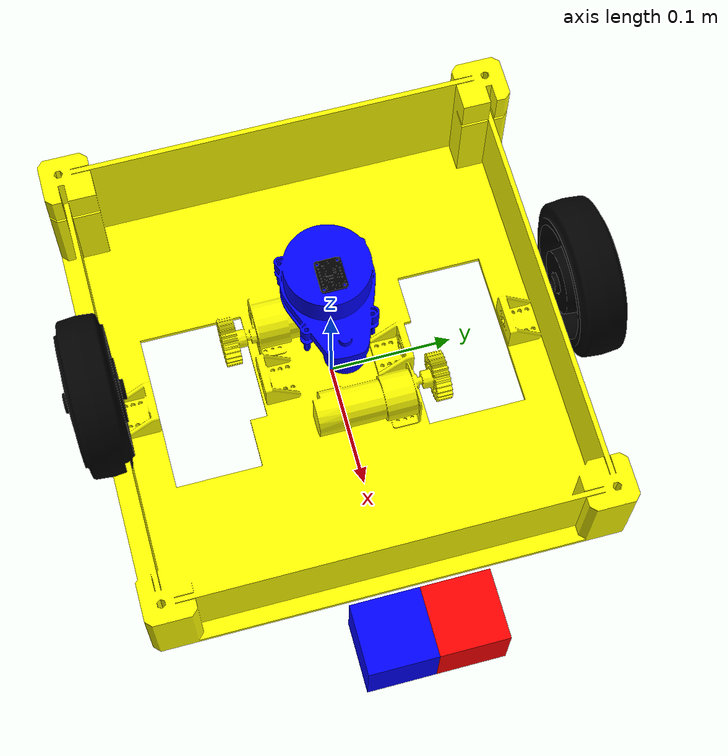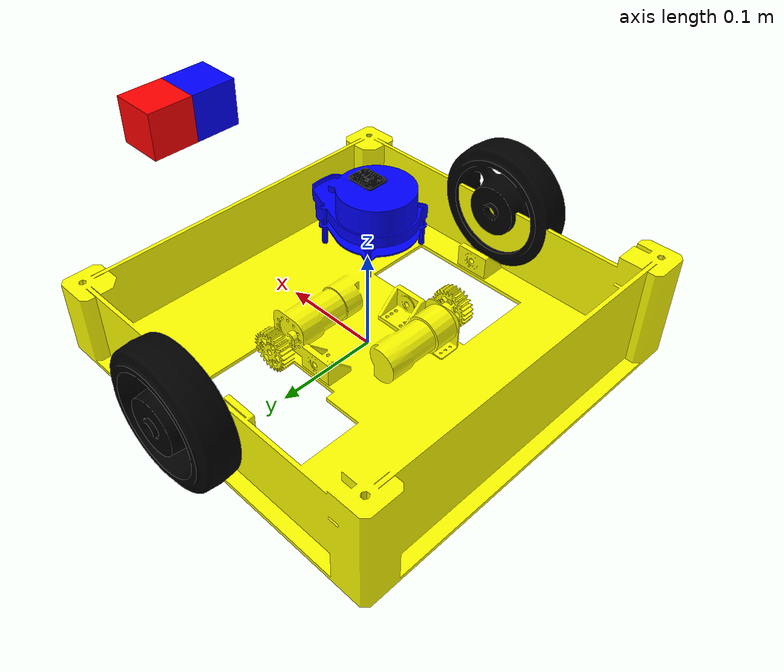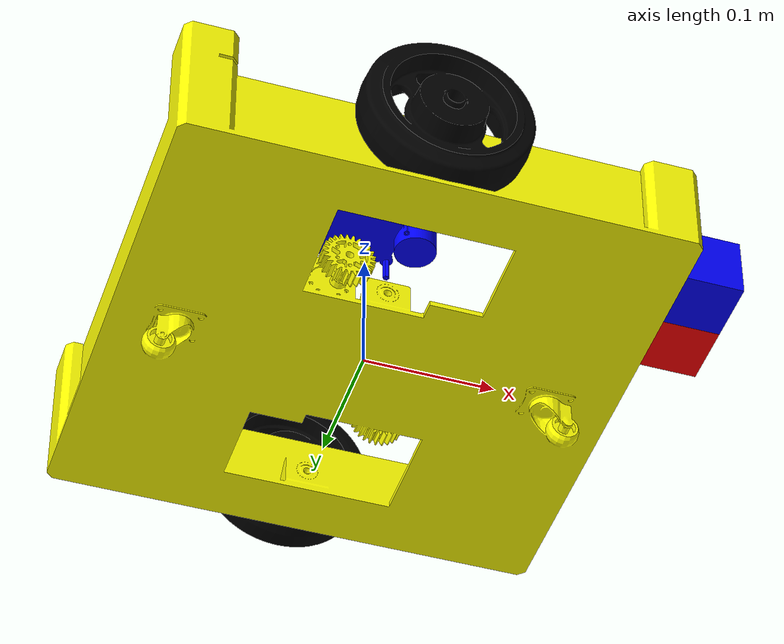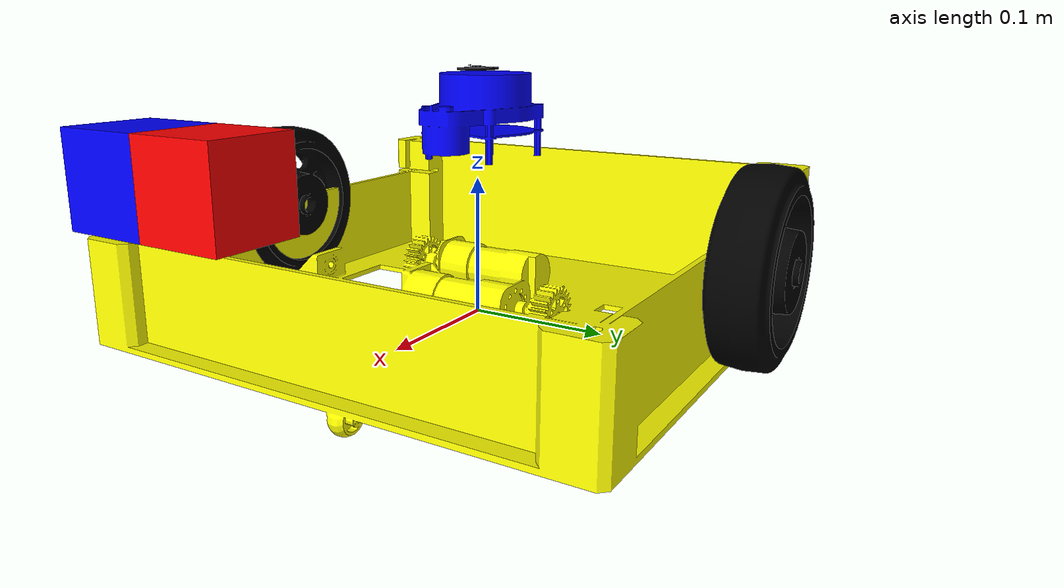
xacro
<?xml version="1.0" ?>
<robot name="mr_robot_description" xmlns:xacro="http://www.ros.org/wiki/xacro">

<xacro:include filename="$(find mr_robot_description)/urdf/materials.xacro" />
<xacro:include filename="$(find mr_robot_description)/urdf/mr_robot_description.trans" />
<xacro:include filename="$(find mr_robot_description)/urdf/mr_robot_description.gazebo" />

<!-- it is just the anchor point of the world  -->
<!-- for very limk we need a joint  -->

<link name="base_footprint">
</link>

<link name="base_link">
  <inertial>
    <origin xyz="-0.004201988917363847 0.0016044494109548075 0.0847154915126352" rpy="0 0 0"/>
    <mass value="11.747369099839622"/>
    <inertia ixx="0.185521" iyy="0.434537" izz="0.601531" ixy="0.000399" iyz="0.000191" ixz="-0.002314"/>
  </inertial>
  <visual>
    <origin xyz="0 0 0" rpy="0 0 0"/>
    <geometry>
      <mesh filename="file://$(find mr_robot_description)/meshes/base_link.stl" scale="0.001 0.001 0.001"/>
    </geometry>
    <material name="Yellow"/>
  </visual>
  <collision>
    <origin xyz="0 0 0" rpy="0 0 0"/>
    <geometry>
      <mesh filename="file://$(find mr_robot_description)/meshes/base_link.stl" scale="0.001 0.001 0.001"/>
    </geometry>
  </collision>
</link>

<joint name="base_link_joint" type="fixed">
  <parent link="base_footprint"/>
  <child link="base_link"/>
  <origin xyz="0 0 0" rpy="0 0 0"/>
</joint>

<link name="Wheel_r_1">
  <inertial>
    <origin xyz="7.587052287765051e-07 -0.023812499999986303 5.494367044764359e-06" rpy="0 0 0"/>
    <mass value="0.5"/>
    <inertia ixx="0.002748" iyy="0.005028" izz="0.002748" ixy="-0.0" iyz="0.0" ixz="0.0"/>
  </inertial>
  <visual>
    <origin xyz="0.0 -0.22 -0.0629" rpy="0 0 0"/>
    <geometry>
      <mesh filename="file://$(find mr_robot_description)/meshes/Wheel_r_1.stl" scale="0.001 0.001 0.001"/>
    </geometry>
    <material name="black"/>
  </visual>
  <collision>
    <origin xyz="0.0 -0.22 -0.0629" rpy="0 0 0"/>
    <geometry>
      <mesh filename="file://$(find mr_robot_description)/meshes/Wheel_r_1.stl" scale="0.001 0.001 0.001"/>
    </geometry>
  </collision>
</link>

<joint name="right_wheel_joint" type="continuous">
  <origin xyz="0.0 -0.163275 0.0629" rpy="0 0 0"/>
  <parent link="base_link"/>
  <child link="Wheel_r_1"/>
  <axis xyz="0.0 1.0 -0.0"/>
</joint>

<link name="Wheel_l_1">
  <inertial>
    <origin xyz="9.233884580835298e-07 0.023812500000002568 5.551215635751783e-06" rpy="0 0 0"/>
    <mass value="0.5"/>
    <inertia ixx="0.002748" iyy="0.005028" izz="0.002748" ixy="-0.0" iyz="0.0" ixz="0.0"/>
  </inertial>
  <visual>
    <origin xyz="0.0 0.22 -0.0629" rpy="0 0 0"/>
    <geometry>
      <mesh filename="file://$(find mr_robot_description)/meshes/Wheel_l_1.stl" scale="0.001 0.001 0.001"/>
    </geometry>
    <material name="black"/>
  </visual>
  <collision>
    <origin xyz="0.0 0.22 -0.0629" rpy="0 0 0"/>
    <geometry>
      <mesh filename="file://$(find mr_robot_description)/meshes/Wheel_l_1.stl" scale="0.001 0.001 0.001"/>
    </geometry>
  </collision>
</link>

<joint name="left_wheel_joint" type="continuous">
  <origin xyz="0.0 0.171525 0.0629" rpy="0 0 0"/>
  <parent link="base_link"/>
  <child link="Wheel_l_1"/>
  <axis xyz="-0.0 1.0 0.0"/>
</joint>

<link name="gpu_lidar">
  <inertial>
    <origin xyz="-0.0017059004296806112 -8.513948580313796e-17 -0.07729885777720902" rpy="0 0 0"/>
    <mass value="0.2"/>
    <inertia ixx="0.000489" iyy="0.000861" izz="0.000987" ixy="-0.0" iyz="0.0" ixz="0.000148"/>
  </inertial>
  <visual>
    <origin xyz="0.0 0.0 0.0" rpy="0 0 0"/>
    <geometry>
      <mesh filename="file://$(find mr_robot_description)/meshes/lidar_v1_1.stl" scale="0.001 0.001 0.001"/>
    </geometry>
    <material name="blue"/>
  </visual>
  <collision>
    <origin xyz="0.0 0.0 0.0" rpy="0 0 0"/>
    <geometry>
      <mesh filename="file://$(find mr_robot_description)/meshes/lidar_v1_1.stl" scale="0.001 0.001 0.001"/>
    </geometry>
  </collision>
</link>

<joint name="Lidar_joint" type="fixed">
  <origin xyz="0.0 0.0 0.0" rpy="0 0 0"/>
  <child link="gpu_lidar"/>
  <parent link="base_link"/>
</joint>

<link name="imu">
  <inertial>
    <origin xyz="-4.414696966422364e-05 -1.766569519392051e-05 0.0008825653111830794" rpy="0 0 0"/>
    <mass value="0.006457505582555322"/>
    <inertia ixx="0.0" iyy="0.0" izz="1e-06" ixy="-0.0" iyz="0.0" ixz="0.0"/>
  </inertial>
  <visual>
    <origin xyz="0 0 0" rpy="0 0 0"/>
    <geometry>
      <mesh filename="file://$(find mr_robot_description)/meshes/_IMU_1.stl" scale="0.001 0.001 0.001"/>
    </geometry>
    <material name="black"/>
  </visual>
  <collision>
    <origin xyz="0 0 0" rpy="0 0 0"/>
    <geometry>
      <mesh filename="file://$(find mr_robot_description)/meshes/_IMU_1.stl" scale="0.001 0.001 0.001"/>
    </geometry>
  </collision>
</link>

<joint name="imu_joint" type="fixed">
  <origin xyz="0.0 0.0 0.18" rpy="0 0 0"/>
  <child link="imu"/>
  <parent link="base_link"/>
  <axis xyz="0 0 0" />
</joint>

<link name="camera">
  <collision>
    <origin rpy="0 0 0" xyz="0 0 0"/>
    <geometry>
      <box size="0.05 0.05 0.05"/>
    </geometry>
  </collision>
  <visual>
    <origin rpy="0 0 0" xyz="0 0 0"/>     <!-- roll pitch and yaw in radians and xyz in meters-->
    <geometry>
      <box size="0.05 0.05 0.05"/>
    </geometry>
    <material name="blue"/>
  </visual>
  <inertial>
    <mass value="1e-5"/>
    <origin rpy="0 0 0" xyz="0 0 0"/>
    <inertia ixx="1e-6" ixy="0" ixz="0" iyy="1e-6" iyz="0" izz="1e-6"/>
  </inertial>
</link>

<joint name="camera_joint" type="fixed">
    <origin xyz="0.26 -0.025 0.135" rpy="0 0 0"/>
    <parent link="base_link"/>
    <child link="camera"/>
</joint>

<link name="depth_camera">
  <collision>
    <origin xyz="0 0 0" rpy="0 0 0"/>
    <geometry>
  <box size="0.05 0.05 0.05"/>
    </geometry>
  </collision>
  <visual>
    <origin xyz="0 0 0" rpy="0 0 0"/>
    <geometry>
  <box size="0.05 0.05 0.05"/>
    </geometry>
    <material name="red"/>
  </visual>
  <inertial>
    <mass value="1e-5" />
    <origin xyz="0 0 0" rpy="0 0 0"/>
    <inertia ixx="1e-6" ixy="0" ixz="0" iyy="1e-6" iyz="0" izz="1e-6" />
  </inertial>
</link>

<joint name="depth_camera_joint" type="fixed">
  <origin xyz="0.26 0.025 0.135" rpy="0 0 0"/>
  <parent link="base_link"/>
  <child link="depth_camera"/>
</joint>

</robot>

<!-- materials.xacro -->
<robot name="mr_robot_description" xmlns:xacro="http://www.ros.org/wiki/xacro" >

<material name="silver">
  <color rgba="0.700 0.700 0.700 1.000"/>
</material>

<material name="black">
  <color rgba="0.0 0.0 0.0 1.0"/>
</material>

<material name="red">
  <color rgba="1.000 0 0 1.000"/>
</material>

<material name="blue">
  <color rgba="0.0 0.0 1.0 1.0"/>
</material>

<material name="green">
  <color rgba="0.0 1.0 0.0 1.0"/>
</material>

<material name="dark_blue">
  <color rgba="0.0 0.0 0.75 1.0"/>
</material>

<material name="Yellow">
  <color rgba="1.0 1.0 0.0 1.0"/>
</material>

</robot>

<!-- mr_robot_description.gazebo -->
<robot name="mr_robot_description" xmlns:xacro="http://www.ros.org/wiki/xacro" >

<xacro:property name="body_color" value="Gazebo/Yellow" />
<xacro:property name="wheel_color" value ="Gazebo/Black"/>
<xacro:property name="gpu_lidar" value ="Gazebo/Blue"/>
<xacro:property name="imu" value ="Gazebo/Black"/>
<xacro:property name="gps" value ="Gazebo/Black"/>
<xacro:property name="camera" value ="Gazebo/Blue"/>
<xacro:property name="depth_camera" value ="Gazebo/Red"/>

<gazebo reference="base_link"> <!--link named base_link specifies to which link the settings have to applied -->
  <material>${body_color}</material>
  <mu1>0.2</mu1>                  <!--resistance to the initial movement-->
  <mu2>0.2</mu2>                  <!-- dynamic friction-->
  <self_collide>true</self_collide>   <!-- Determines if the link can collide with other links in the same robot.-->
  <gravity>true</gravity>
</gazebo>

<gazebo reference="Wheel_1_1">
  <material>${wheel_color}</material>
  <mu1>0.2</mu1>
  <mu2>0.2</mu2>
  <selfCollide>true</selfCollide>
</gazebo>

<gazebo reference="Wheel_r_1">
  <material>${wheel_color}</material>
  <mu1>0.2</mu1>
  <mu2>0.2</mu2>
  <selfCollide>true</selfCollide>
</gazebo>

<gazebo>
  <plugin filename="gz-sim-diff-drive-system" name="gz::sim::systems::DiffDrive">
    <left_joint>left_wheel_joint</left_joint>
    <right_joint>right_wheel_joint</right_joint>
    <wheel_separation>0.44</wheel_separation>
    <wheel_radius>0.0535</wheel_radius>
    <topic>cmd_vel</topic>

    <odom_topic>odom</odom_topic>
    <frame_id>odom</frame_id>
    <child_frame_id>base_footprint</child_frame_id>  <!--This is the robot’s frame (its body) in odometry messages. If the robot moves forward 1 meter, base_footprint is now at (1, 0) in the odom frame.-->
    <odom_publisher_frequency>30</odom_publisher_frequency>
    <tf_topic>/tf</tf_topic>
  </plugin>
</gazebo>

<gazebo>
       <plugin filename="gz-sim-joint-state-publisher-system"
            name="gz::sim::systems::JointStatePublisher">
            <topic>joint_states</topic>
            <joint_name>left_wheel_joint</joint_name>
            <joint_name>right_wheel_joint</joint_name>
      </plugin>
</gazebo>

<gazebo reference="gpu_lidar">
  <sensor name='gpu_lidar' type='gpu_lidar'>"
    <pose relative_to='base_link'>0.001 0.006 0.18 0 0 0</pose>
    <topic>/laser/scan</topic>
    <gz_frame_id>laser_frame</gz_frame_id>
    <always_on>true</always_on>
    <visualize>true</visualize>
    <update_rate>10</update_rate>
    <lidar>
        <scan>
            <horizontal>
                <samples>360</samples>
                <resolution>1</resolution>
                <min_angle>-3.14</min_angle>
                <max_angle>3.14</max_angle>
            </horizontal>
            <vertical>
                <samples>1</samples>
                <resolution>0.01</resolution>
                <min_angle>0</min_angle>
                <max_angle>0</max_angle>
            </vertical>
        </scan>
        <range>
            <min>0.01</min>
            <max>10.0</max>
            <resolution>0.01</resolution>
        </range>
    </lidar>
  </sensor>
</gazebo>

<gazebo reference="gpu_lidar">
  <material>${gpu_lidar}</material>
  <mu1>0.2</mu1>
  <mu2>0.2</mu2>
  <selfCollide>true</selfCollide>
</gazebo>

<gazebo reference="imu">
<plugin filename="gz-sim-imu-system" name="gz::sim::systems::Imu">
    <link name="imu_link">
      <sensor name="tb3_imu" type="imu">
        <always_on>true</always_on>
        <update_rate>200</update_rate>
        <topic>imu</topic>
                <imu>
              <angular_velocity>
                <x>
                  <noise type="gaussian">
                    <mean>0.0</mean>
                    <stddev>2e-4</stddev>
                  </noise>
                </x>
                <y>
                  <noise type="gaussian">
                    <mean>0.0</mean>
                    <stddev>2e-4</stddev>
                  </noise>
                </y>
                <z>
                  <noise type="gaussian">
                    <mean>0.0</mean>
                    <stddev>2e-4</stddev>
                  </noise>
                </z>
              </angular_velocity>
              <linear_acceleration>
                <x>
                  <noise type="gaussian">
                    <mean>0.0</mean>
                    <stddev>1.7e-2</stddev>
                  </noise>
                </x>
                <y>
                  <noise type="gaussian">
                    <mean>0.0</mean>
                    <stddev>1.7e-2</stddev>
                  </noise>
                </y>
                <z>
                  <noise type="gaussian">
                    <mean>0.0</mean>
                    <stddev>1.7e-2</stddev>
                  </noise>
                </z>
              </linear_acceleration>
            </imu>
      </sensor>
    </link>
  </plugin>
</gazebo>

<gazebo reference="imu">
  <material>imu</material>
  <mu1>0.2</mu1>
  <mu2>0.2</mu2>
  <self_collide>true</self_collide>
</gazebo>

<gazebo reference="camera">
  <plugin filename="gz-harmonic-camera-system" name="gz::harmonic::systems::CameraSystem"/>
  <sensor name="camera" type="camera">
  <always_on>true</always_on>
  <visualize>true</visualize>
  <update_rate>30</update_rate>
  <topic>camera/image_raw</topic>
  <gz_frame_id>camera_rgb_frame</gz_frame_id>
  <camera name="intel_realsense_r200">
    <camera_info_topic>camera/camera_info</camera_info_topic>
    <horizontal_fov>1.02974</horizontal_fov>
    <image>
      <width>1920</width>
      <height>1080</height>
      <format>R8G8B8</format>
    </image>
    <clip>
      <near>0.02</near>
      <far>300</far>
    </clip>
    <noise>
      <type>gaussian</type>
      <!-- Noise is sampled independently per pixel on each frame.
            That pixel's noise value is added to each of its color
            channels, which at that point lie in the range [0,1]. -->
      <mean>0.0</mean>
      <stddev>0.007</stddev>
    </noise>
  </camera>
</sensor>
</gazebo>

<gazebo reference="camera">
  <material>${camera}</material>
  <mu1>0.2</mu1>
  <mu2>0.2</mu2>
  <selfCollide>true</selfCollide>
</gazebo>

<gazebo reference="depth_camera">
  <plugin filename="gz-sim-depth-camera-system" name="gz::sim::systems::DepthCamera"/>
  <sensor type="depth_camera" name="depth_camera">
    <visualize>true</visualize>
    <always_on>true</always_on>
    <enable_metrics>true</enable_metrics>
    <update_rate>10</update_rate>
    <camera>
      <camera_info_topic>depth_camera/depth_camera_info</camera_info_topic>
      <horizontal_fov>1.3962634</horizontal_fov>
      <image>
        <width>640</width>
        <height>480</height>
        <format>R_FLOAT32</format>
      </image>
      <clip>
        <near>0.02</near>
        <far>300</far>
      </clip>
    </camera>
    <topic>depth_camera</topic>
    <gz_frame_id>depth_camera</gz_frame_id>
  </sensor>
</gazebo>

<gazebo reference="depth_camera">
  <material>${depth_camera}</material>
  <mu1>0.2</mu1>
  <mu2>0.2</mu2>
  <selfCollide>true</selfCollide>
</gazebo>

</robot>
